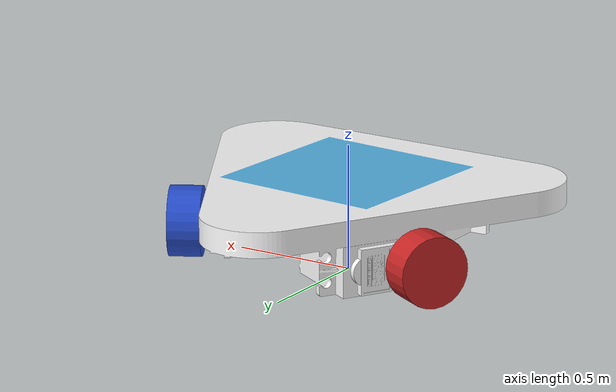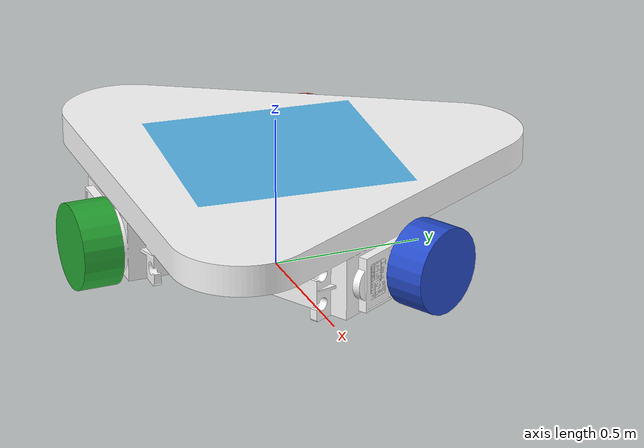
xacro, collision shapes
<?xml version="1.0" ?>

<robot name="hb_bot" xmlns:xacro="http://www.ros.org/wiki/xacro">
    <xacro:include filename="$(find hb_bot)/urdf/materials.xacro"/>

    <link name ="footprint_link">

    </link>
    <joint name="footprint_joint" type="fixed">
         <origin
                xyz="0.0 0.0 0.0"
                rpy="0 0 1.047" />
        <parent link="footprint_link"/>
        <child link="base_link"/>

    </joint>

    <!--Base link-->
    <link name ="base_link">
        <inertial>
            <origin xyz="0 0.0 0.28" rpy="0 0 0" />
            <mass
                value="0.28" />
            <inertia
                ixx="0.011666666666667"
                ixy="0"
                ixz="0"
                iyy="0.011666666666667"
                iyz="0"
                izz="0.011666666666667" />

        </inertial>
         <collision name="collision">
            <origin
                xyz="0 0.0 0.28"
                rpy="0 0 0" />

            <geometry>
                <mesh filename ="file://$(find hb_bot)/meshes/bot_1.dae" scale="0.01  0.01 0.01"/>

            </geometry>
        </collision>
        <visual>
            <origin
                xyz="0 0 0.28"
                rpy="0 0 0" />
            <geometry>
                <mesh
                filename ="file://$(find hb_bot)/meshes/bot_1.dae" scale="0.01  0.01 0.01"/>
            </geometry>

        </visual>
    </link>

    <!-- left wheel -->
    <link name ="Left_wheel">

        <inertial>
            <origin
                xyz="0 -0.05 0.0"
                rpy="1.57 0 0" />
            <mass
                value="0.060" />
            <inertia
                ixx="1.825e-4"
                ixy="0"
                ixz="0.00000000"
                iyy="1.825e-4"
                iyz="0"
                izz="1.825e-4" />
        </inertial>
         <collision name="L_collision">
         <origin
                xyz="0 -0.05 0.0"
                rpy="1.57 0 0" />
          <geometry>
            <cylinder length="0.13" radius="0.14"/>
          </geometry>
        </collision>

        <visual>
            <origin
            xyz="0.0 0.0 0.0"
            rpy="0.0 0.0 0.0" />
            <geometry>
                <mesh filename ="file://$(find hb_bot)/meshes/wheel.stl" scale="5 5 5"/>
            </geometry>

        </visual>
    </link>
    <gazebo reference="Left_wheel"> <material>Gazebo/Red</material> </gazebo>

    <!-- left dummy -->
    <link name ="left_dummy_link">
        <inertial>
            <origin xyz="0 0 0.0" rpy="1.57 0 0" />
            <mass value="0.60" />
            <inertia ixx="0" ixy="0" ixz="0" iyy="0" iyz="0" izz="0" />
        </inertial>
    </link>

     <!-- right_wheel -->
    <link name ="Right_wheel">
        <inertial>
            <origin
                xyz="0.0 -0.05 0.0"
                rpy="-1.57 0.0 0.0"/>
            <mass
                value="0.060" />
            <inertia
                ixx="1.825e-4"
                ixy="0"
                ixz="0.00000000"
                iyy="1.825e-4"
                iyz="0"
                izz="1.825e-4" />

        </inertial>
         <collision name="R_collision">
         <origin
                xyz="0.0 -0.05 0.0"
                rpy="-1.57 0.0 0.0" />
          <geometry>
            <cylinder length="0.13" radius="0.14"/>
          </geometry>
        </collision>

        <visual>
            <origin
            xyz="0.0 0.0 0.0"
            rpy="0 0 0.0" />
            <geometry>
                <mesh filename ="file://$(find hb_bot)/meshes/wheel.stl" scale="5 5 5"/>
            </geometry>

        </visual>
    </link>
    <gazebo reference="Right_wheel"><material>Gazebo/Blue</material></gazebo>

    <link name ="right_dummy_link">
        <inertial>
            <origin xyz="0.0 -0.05 0.0" rpy="-1.57 0.0 0.0"/>
            <mass value="0.60" />
            <inertia ixx="0" ixy="0" ixz="0" iyy="0" iyz="0" izz="0" />
        </inertial>
    </link>

     <!-- Rear_wheel -->
    <link name ="Rear_wheel">
        <inertial>
            <origin
                xyz="0.0 -0.05 0.0"
                rpy="1.57 -0.0 0.0" />
            <mass
                value="0.060" />
            <inertia
                ixx="1.825e-4"
                ixy="0"
                ixz="0.00000000"
                iyy="1.825e-4"
                iyz="0"
                izz="1.825e-4" />
        </inertial>
         <collision name="Rear_collision">
         <origin
                xyz="0.0 -0.05 0.0"
                rpy="1.57 -0.0 0.0" />
          <geometry>
            <cylinder length="0.13" radius="0.14"/>
          </geometry>
        </collision>

        <visual>
            <origin
            xyz="0.0 0.0 0.0"
            rpy="0.0 0.0 0.0 " />
            <geometry>
                <mesh filename ="file://$(find hb_bot)/meshes/wheel.stl" scale="5 5 5"/>
            </geometry>

        </visual>
    </link>
    <gazebo reference="Rear_wheel"><material>Gazebo/Green</material></gazebo>

    <link name ="rear_dummy_link">
        <inertial>
            <origin xyz="0.0 -0.05 0.0" rpy="1.57 -0.0 0.0" />
            <mass value="0.060" />
            <inertia ixx="0" ixy="0" ixz="0" iyy="0" iyz="0" izz="0" />
        </inertial>
    </link>

    <!-- Joint -->
    <joint name ="Rear_wheel_joint" type="continuous" >
        <origin
                xyz="-0.58 -0.35 0.18"
                rpy="0 0 2.12" />
        <parent link="base_link"/>
        <child link="Rear_wheel"/>
        <axis xyz="0.0 -1.0 0.0"/>
        <limit
            effort="5"
            velocity="5" />
    </joint>
    <!-- joint -->
    <joint name ="Right_wheel_joint" type="continuous" >
        <origin
             xyz="0.58 -0.36 0.18"
            rpy="0.0 0.0 -2.12" />
        <parent link="base_link"/>
        <child link="Right_wheel"/>
        <axis xyz="0.0 1.0 0.0"/>
         <limit
            effort="5"
            velocity="5" />
    </joint>
    <!-- Joint -->
    <joint name ="Left_wheel_joint" type="continuous" >
        <origin
                xyz="0.0 0.68 0.18"
                rpy="0 0 0" />
        <parent link="base_link"/>
        <child link="Left_wheel"/>
        <axis xyz="0.0 1.0 0.0"/>
         <limit
            effort="5"
            velocity="5" />
    </joint>

    <!-- Dummy Joints -->
    <joint name ="rear_dummy_joint" type="continuous" >
        <origin
                xyz="-0.58 -0.35 0.18"
                rpy="0 0 3.6652" />
                <!-- 2pi/3 + pi/2 = 2.09 + 1.57 -->
        <parent link="base_link"/>
        <child link="rear_dummy_link"/>
        <axis xyz="0.0 -1.0 0.0"/>
        <limit
            effort="5"
            velocity="5" />
    </joint>
    <!-- joint -->
    <joint name ="right_dummy_joint" type="continuous" >
        <origin
             xyz="0.58 -0.36 0.18"
            rpy="0.0 0.0 -0.5236" />
            <!-- -2pi/3 + pi/2 = -2.09+1.57 -->
        <parent link="base_link"/>
        <child link="right_dummy_link"/>
        <axis xyz="0.0 1.0 0.0"/>
         <limit
            effort="5"
            velocity="5" />
    </joint>
    <!-- Joint -->
    <joint name ="left_dummy_joint" type="continuous" >
        <origin
                xyz="0.0 0.68 0.18"
                rpy="0 0 1.57" />
        <parent link="base_link"/>
        <child link="left_dummy_link"/>
        <axis xyz="0.0 1.0 0.0"/>
         <limit
            effort="5"
            velocity="5" />
    </joint>

    <!-- ros_control plugin -->
    <gazebo>
        <plugin name="right_force" filename="libgazebo_ros_force.so" >
            <ros>
                <namespace>/hb_bot_1</namespace>
                <remapping>gazebo_ros_force:=right_wheel_force</remapping>
            </ros>
            <link_name>right_dummy_link</link_name>
            <!-- not to be changed -->
            <force_frame>link</force_frame>
        </plugin>
    </gazebo>

    <gazebo>
        <plugin name="rear_force" filename="libgazebo_ros_force.so" >
            <ros>
                <namespace>/hb_bot_1</namespace>
                <remapping>gazebo_ros_force:=rear_wheel_force</remapping>
            </ros>
            <link_name>rear_dummy_link</link_name>
            <!-- not to be changed -->
            <force_frame>link</force_frame>
        </plugin>
    </gazebo>

    <gazebo>
        <plugin name="left_force" filename="libgazebo_ros_force.so" >
            <ros>
                <namespace>/hb_bot_1</namespace>
                <remapping>gazebo_ros_force:=left_wheel_force</remapping>
            </ros>
            <link_name>left_dummy_link</link_name>
            <!-- not to be changed -->
            <force_frame>link</force_frame>
        </plugin>
    </gazebo>

    <gazebo>
        <plugin name="object_controller_1" filename="libgazebo_ros_planar_move.so">
            <ros>
                <namespace>/hb_bot_1</namespace>
                <remapping>cmd_vel:=cmd_vel</remapping>
                <remapping>odom:=odom_pose</remapping>
            </ros>
            <robotBaseFrame>footprint_link</robotBaseFrame>
        </plugin>
    </gazebo>

</robot>
